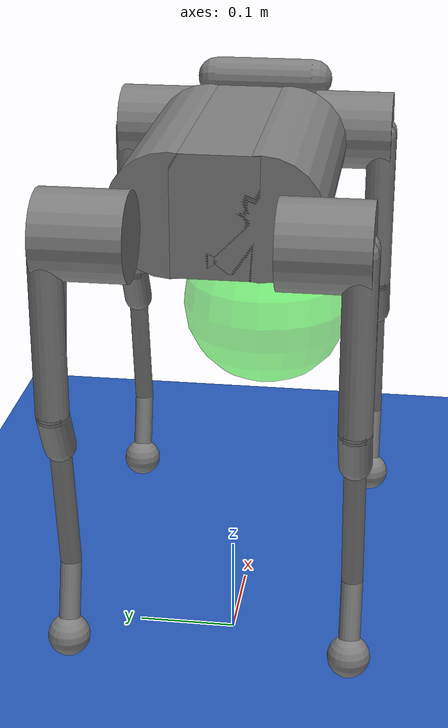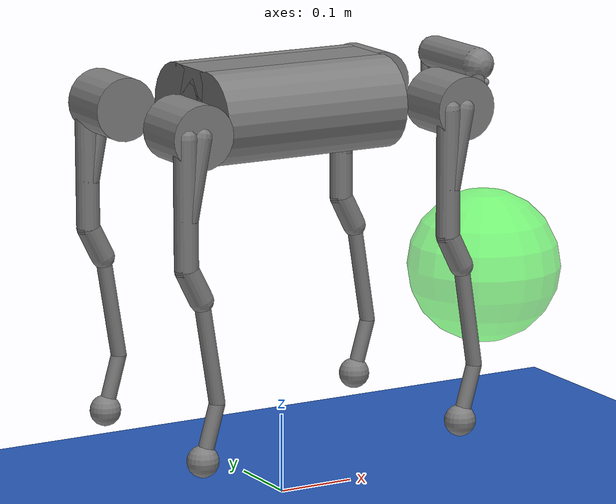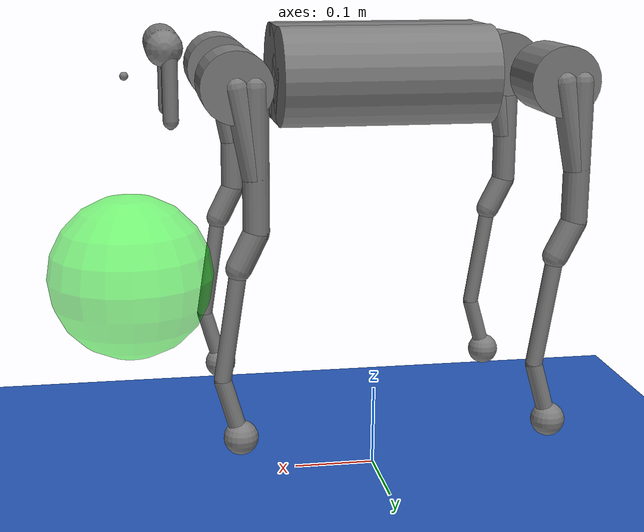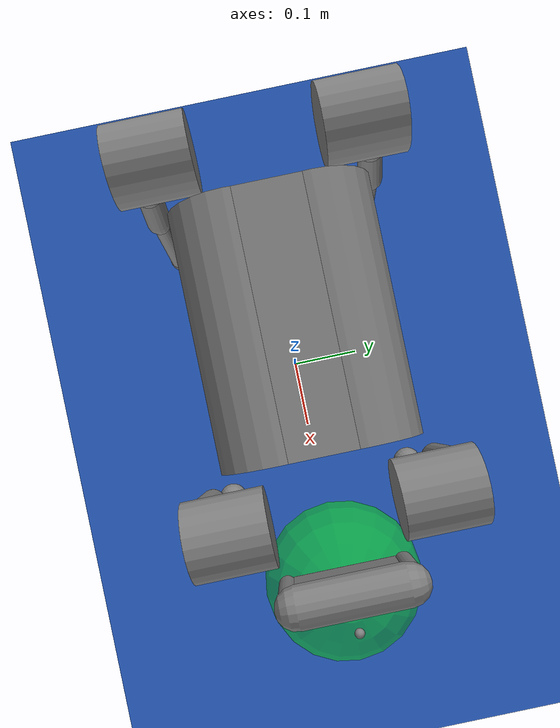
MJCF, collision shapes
<mujoco model="Quadruped">
  <include file="../../object/common.xml"/>

  <size memory="1M"/>

  <custom>
    <text name="task_transition" data="Quadruped|Biped|Walk|Scramble|Flip" />
    <numeric name="agent_planner" data="2 " />
    <numeric name="agent_horizon" data="0.35" />
    <numeric name="agent_timestep" data="0.01" />
    <numeric name="sampling_spline_points" data="3" />
    <numeric name="sampling_trajectories" data="60"/>
    <numeric name="sampling_exploration" data="0.04" />
    <numeric name="gradient_spline_points" data="5" />

    <numeric name="residual_select_Gait" data="0"/>
    <text name="residual_list_Gait" data="Stand|Walk|Trot|Canter|Gallop"/>
    <numeric name="residual_select_Gait switch" data="1"/>
    <text name="residual_list_Gait switch" data="Manual|Automatic"/>
    <numeric name="residual_Cadence" data="2 0 4" />
    <numeric name="residual_Amplitude" data=".06 0 0.2" />
    <numeric name="residual_Duty ratio" data="0 0 1"/>
    <numeric name="residual_Walk speed" data="0 0 4"/>
    <numeric name="residual_Walk turn" data="0 -2 2"/>
    <numeric name="residual_select_Flip dir" data="0"/>
    <text name="residual_list_Flip dir" data="Back Flip|Front Flip"/>
    <numeric name="residual_select_Biped type" data="0"/>
    <text name="residual_list_Biped type" data="Foot Stand|Hand Stand"/>
    <numeric name="residual_Heading" data="0 -3.14 3.14" />
  </custom>

  <visual>
    <headlight diffuse="0.6 0.6 0.6"  ambient="0.3 0.3 0.3" specular="0 0 0"/>
    <global azimuth="-90"/>
  </visual>

  <statistic extent="1" center="0 0 .3"/>

  <worldbody>
    <light pos="0 0 1.5" dir="0 0 -1" diffuse="0.5 0.5 0.5" specular="0.3 0.3 0.3"
      directional="true" castshadow="false"/>
    <geom name="floor" size="0 0 0.1" pos="0 0 -0.01" type="plane" material="blue_grid"/>
     <body name="goal" mocap="true" pos=".3 0 0.26">
        <geom size="0.10" contype="0" conaffinity="0" rgba="0 1 0 .5" group="2"/>
      </body>

  </worldbody>

  <default>
    <default class="torque">
      <general gainprm="40" ctrllimited="true" ctrlrange="-1 1"/>
    </default>
    <default class="task">
      <site rgba="1 0 0 1" size=".02" group="5"/>
      <default class="flight">
        <site rgba="1 .3 .3 1" size="0.019" group="5"/>
      </default>
      <default class="stance">
        <site rgba=".3 1 .3 1" size=".018" group="4"/>
      </default>
    </default>
    <default class="prop">
      <geom type="box" rgba="0 0.4 1 1"/>
    </default>
  </default>

  <include file="a1_mpc_custom.xml" />

  <actuator>
    <general class="torque" name="FR_hip" joint="FR_hip_joint"/>
    <general class="torque" name="FR_thigh" joint="FR_thigh_joint"/>
    <general class="torque" name="FR_calf" joint="FR_calf_joint"/>
    <general class="torque" name="FL_hip" joint="FL_hip_joint"/>
    <general class="torque" name="FL_thigh" joint="FL_thigh_joint"/>
    <general class="torque" name="FL_calf" joint="FL_calf_joint"/>
    <general class="torque" name="RR_hip" joint="RR_hip_joint"/>
    <general class="torque" name="RR_thigh" joint="RR_thigh_joint"/>
    <general class="torque" name="RR_calf" joint="RR_calf_joint"/>
    <general class="torque" name="RL_hip" joint="RL_hip_joint"/>
    <general class="torque" name="RL_thigh" joint="RL_thigh_joint"/>
    <general class="torque" name="RL_calf" joint="RL_calf_joint"/>
  </actuator>

  <sensor>
    <user name="Upright" dim="3" user="6 1 0 3 0.05" />
    <user name="Height" dim="1" user="6 1 0 3 0.04" />
    <user name="Position" dim="3" user="2 0.2 0 0.5 0.1" />
    <user name="Gait" dim="4" user="6 2 0 10 0.03" />
    <user name="Balance" dim="2" user="2 0.2 0 0.3 0.1" />
    <user name="Effort" dim="12" user="0 0.03 0.0 0.1" />
    <user name="Posture" dim="12" user="0 0.02 0.0 0.1" />
    <user name="Orientation" dim="2" user="0 0 0 .03" />
    <user name="Angmom" dim="3" user="0 0 0 .03" />
    <framepos      name="trace0" objtype="site" objname="head"/>
    <subtreecom    name="torso_subtreecom" body="trunk"/>
    <subtreelinvel name="torso_subtreelinvel" body="trunk"/>
    <subtreelinvel name="torso_angmom" body="trunk"/>
  </sensor>

  <keyframe>
    <key name="home"
         qpos="0 0 0.26
               1 0 0 0
               -0.000341931 0.0181576 -0.0268335
               0.00160968 0.0247957 -0.0270045
               0.00191398 -0.033048 -0.0675298
               -0.00199489 -0.0374747 -0.0681862"/>
    <key name="crouch"
         qpos="-0.0501827 0.00107117 0.143925
               1 0 0 0
               0 0 -0.5
               0 0 -0.5
               0 0 -0.5
               0 0 -0.5"/>

  </keyframe>
</mujoco>

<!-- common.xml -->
<mujoco>

  <visual>
    <headlight ambient=".4 .4 .4" diffuse=".8 .8 .8" specular="0.1 0.1 0.1"/>
    <map znear=".01"/>
    <quality shadowsize="2048"/>
    <global elevation="-15"/>
  </visual>

  <asset>
    <texture name="blue_grid" type="2d" builtin="checker" rgb1=".02 .14 .44" rgb2=".27 .55 1" width="300" height="300" mark="edge" markrgb="1 1 1"/>
    <material name="blue_grid" texture="blue_grid" texrepeat="1 1" texuniform="true" reflectance=".2"/>

    <texture name="grey_grid" type="2d" builtin="checker" rgb1=".26 .26 .26" rgb2=".6 .6 .6" width="300" height="300" mark="edge" markrgb="1 1 1"/>
    <material name="grey_grid" texture="blue_grid" texrepeat="1 1" texuniform="true" reflectance=".2"/>
    <texture name="skybox" type="skybox" builtin="gradient" rgb1="1 1 1" rgb2="1 1 1" width="800" height="800"/>

    <material name="self" rgba=".7 .5 .3 1"/>
    <material name="self_default" rgba=".7 .5 .3 1"/>
    <material name="self_highlight" rgba="0 .5 .3 1"/>
    <material name="effector" rgba=".7 .4 .2 1"/>
    <material name="effector_default" rgba=".7 .4 .2 1"/>
    <material name="effector_highlight" rgba="0 .5 .3 1"/>
    <material name="decoration" rgba=".2 .6 .3 1"/>
    <material name="eye" rgba="0 .2 1 1"/>
    <material name="target" rgba=".6 .3 .3 1"/>
    <material name="target_default" rgba=".6 .3 .3 1"/>
    <material name="target_highlight" rgba=".6 .3 .3 .4"/>
    <material name="site" rgba=".5 .5 .5 .3"/>
  </asset>
</mujoco>

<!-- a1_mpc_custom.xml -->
<mujoco model="Unitree A1">
  <compiler angle="radian" meshdir="assets" texturedir="assets"/>

  <option cone="elliptic" impratio="10"/>

  <default>
    <default class="a1">
      <geom friction="0.6" margin="0.001" condim="1"/>
      <joint axis="0 1 0" damping="2" armature="0.01" frictionloss="0.2" limited="true"/>
      <position kp="50" ctrllimited="true" forcelimited="true" forcerange="-33.5 33.5"/>
      <default class="abduction">
        <joint axis="1 0 0" damping="1" range="-0.802851 0.802851"/>
        <position ctrlrange="-0.802851 0.802851"/>
      </default>
      <default class="hip">
        <joint range="-1.9472 3.28879" ref="-0.9"/>
        <position ctrlrange="-1.9472 3.28879"/>
      </default>
      <default class="knee">
        <joint range="-0.89653 0.883702" ref="1.8"/>
        <position ctrlrange="-0.89653 0.883702"/>
      </default>
      <default class="visual">
        <geom type="mesh" contype="0" conaffinity="0" group="2" material="dark"/>
      </default>
      <default class="collision">
        <geom group="3" type="capsule"/>
        <default class="hip_left">
          <geom size="0.04 0.04" quat="1 1 0 0" type="cylinder" pos="0 0.055 0"/>
        </default>
        <default class="hip_right">
          <geom size="0.04 0.04" quat="1 1 0 0" type="cylinder" pos="0 -0.055 0"/>
        </default>
        <default class="thigh1">
          <geom size="0.015" fromto="-0.02 0 0 -0.02 0 -0.16"/>
        </default>
        <default class="thigh2">
          <geom size="0.015" fromto="0 0 0 -0.02 0 -0.1"/>
        </default>
        <default class="thigh3">
          <geom size="0.015" fromto="-0.02 0 -0.16 0 0 -0.2"/>
        </default>
        <default class="calf1">
          <geom size="0.01" fromto="0 0 0 0.02 0 -0.13"/>
        </default>
        <default class="calf2">
          <geom size="0.01" fromto="0.02 0 -0.13 0 0 -0.2"/>
        </default>
        <default class="foot">
          <geom type="sphere" size="0.02" pos="0 0 -0.2" priority="1" solimp="0.015 1 0.031"
              condim="6" friction="0.8 0.02 0.01"/>
        </default>
      </default>
    </default>
  </default>

  <asset>
    <material name="dark" specular="0" shininess="0.25" rgba="0.2 0.2 0.2 1"/>
    <texture type="2d" name="trunk_A1" file="trunk_A1.png"/>
    <material name="carbonfibre" texture="trunk_A1" specular="0" shininess="0.25"/>

    <mesh class="a1" file="calf.obj"/>
    <mesh class="a1" file="hip.obj"/>
    <mesh class="a1" file="thigh.obj"/>
    <mesh class="a1" file="thigh_mirror.obj"/>
    <mesh class="a1" file="trunk.obj"/>
  </asset>

  <worldbody>
    <body name="trunk" pos="0.0 0.0 0.5" quat="1 0 0 0" childclass="a1">
      <light pos="0 0 5" mode="trackcom" diffuse="0.8 0.8 0.8"/>
      <site name="torso" user="0.0 0.0 0.0 0.0 0.0 0.0 0.0 0.0 0.0 0.0 0.0 0.0 0.0 0.0 0.0 0.0 0.0 0.0 0.0 0.0 0.0"/>
      <site name="head" pos=".3 0 0"/>
      <freejoint/>
      <inertial mass="4.713" pos="0 0.0041 -0.0005"
          fullinertia="0.0158533 0.0377999 0.0456542 -3.66e-05 -6.11e-05 -2.75e-05"/>
      <geom class="visual" mesh="trunk" material="carbonfibre"/>
      <geom class="collision" size="0.125 0.04 0.057" type="box"/>
      <geom class="collision" quat="1 0 1 0" pos="0 -0.04 0" size="0.058 0.125" type="cylinder"/>
      <geom class="collision" quat="1 0 1 0" pos="0 +0.04 0" size="0.058 0.125" type="cylinder"/>
      <geom class="collision" pos="0.25 0 0" size="0.005 0.06 0.05" type="box"/>
      <geom class="collision" pos="0.25 0.06 -0.01" size="0.009 0.035"/>
      <geom class="collision" pos="0.25 -0.06 -0.01" size="0.009 0.035"/>
      <geom class="collision" pos="0.25 0 -0.05" size="0.005 0.06" quat="1 1 0 0"/>
      <geom class="collision" pos="0.255 0 0.0355" size="0.021 0.052" quat="1 1 0 0"/>
      <body name="FR_hip" pos="0.183 -0.047 0">
        <inertial mass="0.696" pos="-0.003311 -0.000635 3.1e-05"
            quat="0.507528 0.506268 0.491507 0.494499"
            diaginertia="0.000807752 0.00055293 0.000468983"/>
        <joint class="abduction" name="FR_hip_joint"/>
        <geom class="visual" mesh="hip" quat="0 1 0 0"/>
        <geom class="hip_right"/>
        <body name="FR_thigh" pos="0 -0.08505 0">
          <inertial mass="1.013" pos="-0.003237 0.022327 -0.027326"
              quat="0.999125 -0.00256393 -0.0409531 -0.00806091"
              diaginertia="0.00555739 0.00513936 0.00133944"/>
          <joint class="hip" name="FR_thigh_joint"/>
          <geom class="visual" mesh="thigh_mirror"/>
          <geom class="thigh1"/>
          <geom class="thigh2"/>
          <geom class="thigh3"/>
          <body name="FR_calf" pos="0 0 -0.2">
            <inertial mass="0.226" pos="0.00472659 0 -0.131975"
                quat="0.706886 0.017653 0.017653 0.706886"
                diaginertia="0.00340344 0.00339393 3.54834e-05"/>
            <joint class="knee" name="FR_calf_joint"/>
            <geom class="visual" mesh="calf"/>
            <geom class="calf1"/>
            <geom class="calf2"/>
            <geom name="FR" class="foot"/>
            <site name="FR" pos="0 0 -0.2" type="sphere" size=".015"/>
          </body>
        </body>
      </body>
      <body name="FL_hip" pos="0.183 0.047 0">
        <inertial mass="0.696" pos="-0.003311 0.000635 3.1e-05"
            quat="0.494499 0.491507 0.506268 0.507528"
            diaginertia="0.000807752 0.00055293 0.000468983"/>
        <joint class="abduction" name="FL_hip_joint"/>
        <geom class="visual" mesh="hip"/>
        <geom class="hip_left"/>
        <geom class="collision" size="0.04 0.04" pos="0 0.055 0" quat="1 1 0 0" type="cylinder"/>
        <body name="FL_thigh" pos="0 0.08505 0">
          <inertial mass="1.013" pos="-0.003237 -0.022327 -0.027326"
              quat="0.999125 0.00256393 -0.0409531 0.00806091"
              diaginertia="0.00555739 0.00513936 0.00133944"/>
          <joint class="hip" name="FL_thigh_joint"/>
          <geom class="visual" mesh="thigh"/>
          <geom class="thigh1"/>
          <geom class="thigh2"/>
          <geom class="thigh3"/>
          <body name="FL_calf" pos="0 0 -0.2">
            <inertial mass="0.226" pos="0.00472659 0 -0.131975"
                quat="0.706886 0.017653 0.017653 0.706886"
                diaginertia="0.00340344 0.00339393 3.54834e-05"/>
            <joint class="knee" name="FL_calf_joint"/>
            <geom class="visual" mesh="calf"/>
            <geom class="calf1"/>
            <geom class="calf2"/>
            <geom name="FL" class="foot"/>
            <site name="FL" pos="0 0 -0.2" type="sphere" size=".015"/>
          </body>
        </body>
      </body>
      <body name="HR_hip" pos="-0.183 -0.047 0">
        <inertial mass="0.696" pos="0.003311 -0.000635 3.1e-05"
            quat="0.491507 0.494499 0.507528 0.506268"
            diaginertia="0.000807752 0.00055293 0.000468983"/>
        <joint class="abduction" name="RR_hip_joint"/>
        <geom class="visual" quat="0 0 0 -1" mesh="hip"/>
        <geom class="hip_right"/>
        <body name="RR_thigh" pos="0 -0.08505 0">
          <inertial mass="1.013" pos="-0.003237 0.022327 -0.027326"
              quat="0.999125 -0.00256393 -0.0409531 -0.00806091"
              diaginertia="0.00555739 0.00513936 0.00133944"/>
          <joint class="hip" name="RR_thigh_joint"/>
          <geom class="visual" mesh="thigh_mirror"/>
          <geom class="thigh1"/>
          <geom class="thigh2"/>
          <geom class="thigh3"/>
          <body name="RR_calf" pos="0 0 -0.2">
            <inertial mass="0.226" pos="0.00472659 0 -0.131975"
                quat="0.706886 0.017653 0.017653 0.706886"
                diaginertia="0.00340344 0.00339393 3.54834e-05"/>
            <joint class="knee" name="RR_calf_joint"/>
            <geom class="visual" mesh="calf"/>
            <geom class="calf1"/>
            <geom class="calf2"/>
            <geom name="HR" class="foot"/>
            <site name="RR" pos="0 0 -0.2" type="sphere" size=".015"/>
          </body>
        </body>
      </body>
      <body name="HL_hip" pos="-0.183 0.047 0">
        <inertial mass="0.696" pos="0.003311 0.000635 3.1e-05"
            quat="0.506268 0.507528 0.494499 0.491507"
            diaginertia="0.000807752 0.00055293 0.000468983"/>
        <joint class="abduction" name="RL_hip_joint"/>
        <geom class="visual" quat="0 0 1 0" mesh="hip"/>
        <geom class="hip_left"/>
        <body name="RL_thigh" pos="0 0.08505 0">
          <inertial mass="1.013" pos="-0.003237 -0.022327 -0.027326"
              quat="0.999125 0.00256393 -0.0409531 0.00806091"
              diaginertia="0.00555739 0.00513936 0.00133944"/>
          <joint class="hip" name="RL_thigh_joint"/>
          <geom class="visual" mesh="thigh"/>
          <geom class="thigh1"/>
          <geom class="thigh2"/>
          <geom class="thigh3"/>
          <body name="RL_calf" pos="0 0 -0.2">
            <inertial mass="0.226" pos="0.00472659 0 -0.131975"
                quat="0.706886 0.017653 0.017653 0.706886"
                diaginertia="0.00340344 0.00339393 3.54834e-05"/>
            <joint class="knee" name="RL_calf_joint"/>
            <geom class="visual" mesh="calf"/>
            <geom class="calf1"/>
            <geom class="calf2"/>
            <geom name="HL" class="foot"/>
            <site name="RL" pos="0 0 -0.2" type="sphere" size=".015"/>
          </body>
        </body>
      </body>
    </body>
  </worldbody>
</mujoco>
